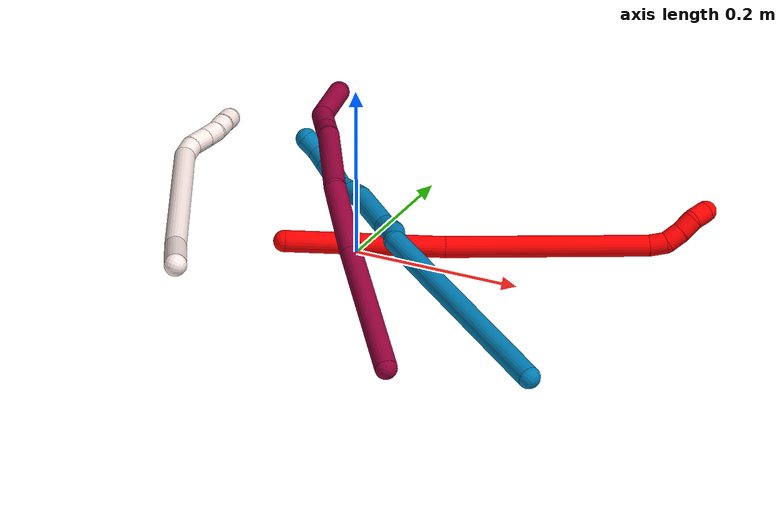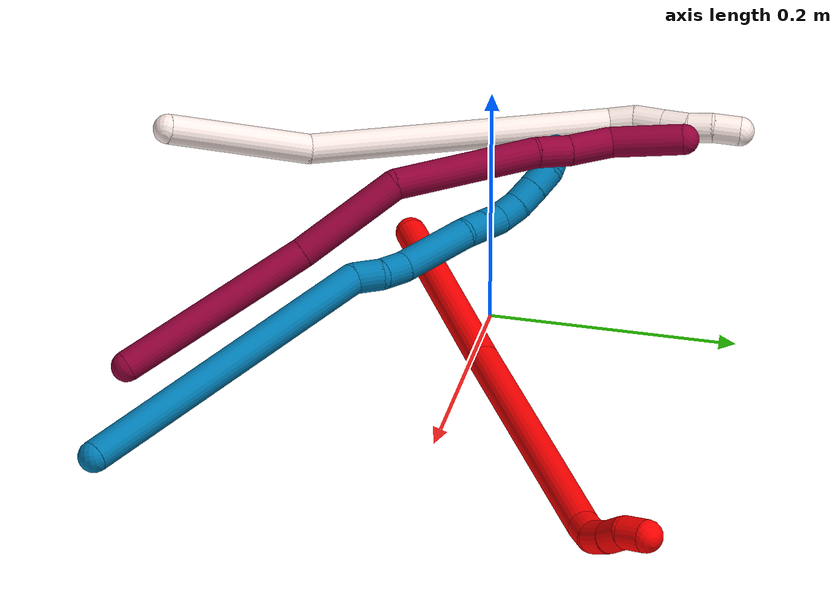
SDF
<sdf version="1.7">
 <world name="default">
  <model name="2">
   <static>0</static>
   <link name="2">
    <collision name="collision-cylinder-e_1_1_4">
     <pose>0.022684 0.012614 0.087803 -0.14269 0.250363 -0.017986</pose>
     <geometry><cylinder><radius>0.0125</radius><length>0.183118</length></cylinder></geometry>
     <surface>
      <friction><ode><mu>1.16</mu><mu2>1.16</mu2><slip1>0</slip1><slip2>0</slip2></ode></friction>
      <contact><ode><kp>1e+06</kp><kd>1</kd><max_vel>0</max_vel><min_depth>0.001</min_depth></ode></contact>
     </surface>
    </collision>
    <visual name="visual-cylinder-e_1_1_4">
     <pose>0.022684 0.012614 0.087803 -0.14269 0.250363 -0.017986</pose>
     <geometry><cylinder><radius>0.0125</radius><length>0.183118</length></cylinder></geometry>
     <material><ambient>1 0 0 1</ambient></material>
    </visual>
    <collision name="collision-cylinder-e_2_4_5">
     <pose>0.073002 0.035198 0.289616 -0.087218 0.236925 -0.010387</pose>
     <geometry><cylinder><radius>0.0125</radius><length>0.235468</length></cylinder></geometry>
     <surface>
      <friction><ode><mu>1.16</mu><mu2>1.16</mu2><slip1>0</slip1><slip2>0</slip2></ode></friction>
      <contact><ode><kp>1e+06</kp><kd>1</kd><max_vel>0</max_vel><min_depth>0.001</min_depth></ode></contact>
     </surface>
    </collision>
    <visual name="visual-cylinder-e_2_4_5">
     <pose>0.073002 0.035198 0.289616 -0.087218 0.236925 -0.010387</pose>
     <geometry><cylinder><radius>0.0125</radius><length>0.235468</length></cylinder></geometry>
     <material><ambient>1 0 0 1</ambient></material>
    </visual>
    <collision name="collision-cylinder-e_3_5_6">
     <pose>0.102274 0.044412 0.413629 0.075314 0.161797 0.006109</pose>
     <geometry><cylinder><radius>0.0125</radius><length>0.020329</length></cylinder></geometry>
     <surface>
      <friction><ode><mu>1.16</mu><mu2>1.16</mu2><slip1>0</slip1><slip2>0</slip2></ode></friction>
      <contact><ode><kp>1e+06</kp><kd>1</kd><max_vel>0</max_vel><min_depth>0.001</min_depth></ode></contact>
     </surface>
    </collision>
    <visual name="visual-cylinder-e_3_5_6">
     <pose>0.102274 0.044412 0.413629 0.075314 0.161797 0.006109</pose>
     <geometry><cylinder><radius>0.0125</radius><length>0.020329</length></cylinder></geometry>
     <material><ambient>1 0 0 1</ambient></material>
    </visual>
    <collision name="collision-cylinder-e_4_6_7">
     <pose>0.101043 0.041232 0.433263 0.246651 -0.281152 -0.035078</pose>
     <geometry><cylinder><radius>0.0125</radius><length>0.020674</length></cylinder></geometry>
     <surface>
      <friction><ode><mu>1.16</mu><mu2>1.16</mu2><slip1>0</slip1><slip2>0</slip2></ode></friction>
      <contact><ode><kp>1e+06</kp><kd>1</kd><max_vel>0</max_vel><min_depth>0.001</min_depth></ode></contact>
     </surface>
    </collision>
    <visual name="visual-cylinder-e_4_6_7">
     <pose>0.101043 0.041232 0.433263 0.246651 -0.281152 -0.035078</pose>
     <geometry><cylinder><radius>0.0125</radius><length>0.020674</length></cylinder></geometry>
     <material><ambient>1 0 0 1</ambient></material>
    </visual>
    <collision name="collision-cylinder-e_5_7_8">
     <pose>0.09421 0.035436 0.451517 0.372734 -0.404564 -0.077302</pose>
     <geometry><cylinder><radius>0.0125</radius><length>0.020145</length></cylinder></geometry>
     <surface>
      <friction><ode><mu>1.16</mu><mu2>1.16</mu2><slip1>0</slip1><slip2>0</slip2></ode></friction>
      <contact><ode><kp>1e+06</kp><kd>1</kd><max_vel>0</max_vel><min_depth>0.001</min_depth></ode></contact>
     </surface>
    </collision>
    <visual name="visual-cylinder-e_5_7_8">
     <pose>0.09421 0.035436 0.451517 0.372734 -0.404564 -0.077302</pose>
     <geometry><cylinder><radius>0.0125</radius><length>0.020145</length></cylinder></geometry>
     <material><ambient>1 0 0 1</ambient></material>
    </visual>
    <collision name="collision-cylinder-e_6_8_2">
     <pose>0.086496 0.032608 0.469538 -0.057843 -0.379079 0.0111</pose>
     <geometry><cylinder><radius>0.0125</radius><length>0.020266</length></cylinder></geometry>
     <surface>
      <friction><ode><mu>1.16</mu><mu2>1.16</mu2><slip1>0</slip1><slip2>0</slip2></ode></friction>
      <contact><ode><kp>1e+06</kp><kd>1</kd><max_vel>0</max_vel><min_depth>0.001</min_depth></ode></contact>
     </surface>
    </collision>
    <visual name="visual-cylinder-e_6_8_2">
     <pose>0.086496 0.032608 0.469538 -0.057843 -0.379079 0.0111</pose>
     <geometry><cylinder><radius>0.0125</radius><length>0.020266</length></cylinder></geometry>
     <material><ambient>1 0 0 1</ambient></material>
    </visual>
    <collision name="collision-sphere-2">
     <pose>0.082746 0.033152 0.478937 0 -0 0</pose>
     <geometry><sphere><radius>0.0125</radius></sphere></geometry>
     <surface>
      <friction><ode><mu>1.16</mu><mu2>1.16</mu2><slip1>0</slip1><slip2>0</slip2></ode></friction>
      <contact><ode><kp>1e+06</kp><kd>1</kd><max_vel>0</max_vel><min_depth>0.001</min_depth></ode></contact>
     </surface>
    </collision>
    <visual name="visual-sphere-2">
     <pose>0.082746 0.033152 0.478937 0 -0 0</pose>
     <geometry><sphere><radius>0.0125</radius></sphere></geometry>
     <material><ambient>1 0 0 1</ambient></material>
    </visual>
    <collision name="collision-sphere-4">
     <pose>0.045368 0.025229 0.175606 0 -0 0</pose>
     <geometry><sphere><radius>0.0125</radius></sphere></geometry>
     <surface>
      <friction><ode><mu>1.16</mu><mu2>1.16</mu2><slip1>0</slip1><slip2>0</slip2></ode></friction>
      <contact><ode><kp>1e+06</kp><kd>1</kd><max_vel>0</max_vel><min_depth>0.001</min_depth></ode></contact>
     </surface>
    </collision>
    <visual name="visual-sphere-4">
     <pose>0.045368 0.025229 0.175606 0 -0 0</pose>
     <geometry><sphere><radius>0.0125</radius></sphere></geometry>
     <material><ambient>1 0 0 1</ambient></material>
    </visual>
    <collision name="collision-sphere-1">
     <geometry><sphere><radius>0.0125</radius></sphere></geometry>
     <surface>
      <friction><ode><mu>1.16</mu><mu2>1.16</mu2><slip1>0</slip1><slip2>0</slip2></ode></friction>
      <contact><ode><kp>1e+06</kp><kd>1</kd><max_vel>0</max_vel><min_depth>0.001</min_depth></ode></contact>
     </surface>
    </collision>
    <visual name="visual-sphere-1">
     <geometry><sphere><radius>0.0125</radius></sphere></geometry>
     <material><ambient>1 0 0 1</ambient></material>
    </visual>
    <collision name="collision-sphere-8">
     <pose>0.090246 0.032064 0.46014 0 -0 0</pose>
     <geometry><sphere><radius>0.0125</radius></sphere></geometry>
     <surface>
      <friction><ode><mu>1.16</mu><mu2>1.16</mu2><slip1>0</slip1><slip2>0</slip2></ode></friction>
      <contact><ode><kp>1e+06</kp><kd>1</kd><max_vel>0</max_vel><min_depth>0.001</min_depth></ode></contact>
     </surface>
    </collision>
    <visual name="visual-sphere-8">
     <pose>0.090246 0.032064 0.46014 0 -0 0</pose>
     <geometry><sphere><radius>0.0125</radius></sphere></geometry>
     <material><ambient>1 0 0 1</ambient></material>
    </visual>
    <collision name="collision-sphere-5">
     <pose>0.100636 0.045167 0.403626 0 -0 0</pose>
     <geometry><sphere><radius>0.0125</radius></sphere></geometry>
     <surface>
      <friction><ode><mu>1.16</mu><mu2>1.16</mu2><slip1>0</slip1><slip2>0</slip2></ode></friction>
      <contact><ode><kp>1e+06</kp><kd>1</kd><max_vel>0</max_vel><min_depth>0.001</min_depth></ode></contact>
     </surface>
    </collision>
    <visual name="visual-sphere-5">
     <pose>0.100636 0.045167 0.403626 0 -0 0</pose>
     <geometry><sphere><radius>0.0125</radius></sphere></geometry>
     <material><ambient>1 0 0 1</ambient></material>
    </visual>
    <collision name="collision-sphere-6">
     <pose>0.103911 0.043657 0.423632 0 -0 0</pose>
     <geometry><sphere><radius>0.0125</radius></sphere></geometry>
     <surface>
      <friction><ode><mu>1.16</mu><mu2>1.16</mu2><slip1>0</slip1><slip2>0</slip2></ode></friction>
      <contact><ode><kp>1e+06</kp><kd>1</kd><max_vel>0</max_vel><min_depth>0.001</min_depth></ode></contact>
     </surface>
    </collision>
    <visual name="visual-sphere-6">
     <pose>0.103911 0.043657 0.423632 0 -0 0</pose>
     <geometry><sphere><radius>0.0125</radius></sphere></geometry>
     <material><ambient>1 0 0 1</ambient></material>
    </visual>
    <collision name="collision-sphere-7">
     <pose>0.098175 0.038808 0.442894 0 -0 0</pose>
     <geometry><sphere><radius>0.0125</radius></sphere></geometry>
     <surface>
      <friction><ode><mu>1.16</mu><mu2>1.16</mu2><slip1>0</slip1><slip2>0</slip2></ode></friction>
      <contact><ode><kp>1e+06</kp><kd>1</kd><max_vel>0</max_vel><min_depth>0.001</min_depth></ode></contact>
     </surface>
    </collision>
    <visual name="visual-sphere-7">
     <pose>0.098175 0.038808 0.442894 0 -0 0</pose>
     <geometry><sphere><radius>0.0125</radius></sphere></geometry>
     <material><ambient>1 0 0 1</ambient></material>
    </visual>
    <inertial>
     <pose>0.058325 0.027456 0.240502 0 -0 0</pose>
     <mass>0.5</mass>
     <inertia>
      <ixx>0.001561</ixx>
      <ixy>0</ixy>
      <ixz>0</ixz>
      <iyy>0.001595</iyy>
      <iyz>0</iyz>
      <izz>-0.000511</izz>
     </inertia>
    </inertial>
   </link>
   <pose>-0.052482 -0.078413 0.037602 -1.40792 0.451378 -0.783906</pose>
  </model>
  <model name="8">
   <static>0</static>
   <link name="8">
    <collision name="collision-cylinder-e_1_1_4">
     <pose>-0.023371 0.050576 0.061276 -0.690028 -0.286085 0.10343</pose>
     <geometry><cylinder><radius>0.0125</radius><length>0.165638</length></cylinder></geometry>
     <surface>
      <friction><ode><mu>1.16</mu><mu2>1.16</mu2><slip1>0</slip1><slip2>0</slip2></ode></friction>
      <contact><ode><kp>1e+06</kp><kd>1</kd><max_vel>0</max_vel><min_depth>0.001</min_depth></ode></contact>
     </surface>
    </collision>
    <visual name="visual-cylinder-e_1_1_4">
     <pose>-0.023371 0.050576 0.061276 -0.690028 -0.286085 0.10343</pose>
     <geometry><cylinder><radius>0.0125</radius><length>0.165638</length></cylinder></geometry>
     <material><ambient>0.584314 0 0.227451 1</ambient></material>
    </visual>
    <collision name="collision-cylinder-e_2_4_5">
     <pose>-0.060806 0.125827 0.158907 -0.5963 -0.309774 0.095892</pose>
     <geometry><cylinder><radius>0.0125</radius><length>0.092266</length></cylinder></geometry>
     <surface>
      <friction><ode><mu>1.16</mu><mu2>1.16</mu2><slip1>0</slip1><slip2>0</slip2></ode></friction>
      <contact><ode><kp>1e+06</kp><kd>1</kd><max_vel>0</max_vel><min_depth>0.001</min_depth></ode></contact>
     </surface>
    </collision>
    <visual name="visual-cylinder-e_2_4_5">
     <pose>-0.060806 0.125827 0.158907 -0.5963 -0.309774 0.095892</pose>
     <geometry><cylinder><radius>0.0125</radius><length>0.092266</length></cylinder></geometry>
     <material><ambient>0.584314 0 0.227451 1</ambient></material>
    </visual>
    <collision name="collision-cylinder-e_3_5_6">
     <pose>-0.074544 0.195924 0.233138 -0.87574 0.005501 -0.002576</pose>
     <geometry><cylinder><radius>0.0125</radius><length>0.118287</length></cylinder></geometry>
     <surface>
      <friction><ode><mu>1.16</mu><mu2>1.16</mu2><slip1>0</slip1><slip2>0</slip2></ode></friction>
      <contact><ode><kp>1e+06</kp><kd>1</kd><max_vel>0</max_vel><min_depth>0.001</min_depth></ode></contact>
     </surface>
    </collision>
    <visual name="visual-cylinder-e_3_5_6">
     <pose>-0.074544 0.195924 0.233138 -0.87574 0.005501 -0.002576</pose>
     <geometry><cylinder><radius>0.0125</radius><length>0.118287</length></cylinder></geometry>
     <material><ambient>0.584314 0 0.227451 1</ambient></material>
    </visual>
    <collision name="collision-cylinder-e_4_6_7">
     <pose>-0.073273 0.253732 0.277631 -1.08014 0.06727 -0.04034</pose>
     <geometry><cylinder><radius>0.0125</radius><length>0.028148</length></cylinder></geometry>
     <surface>
      <friction><ode><mu>1.16</mu><mu2>1.16</mu2><slip1>0</slip1><slip2>0</slip2></ode></friction>
      <contact><ode><kp>1e+06</kp><kd>1</kd><max_vel>0</max_vel><min_depth>0.001</min_depth></ode></contact>
     </surface>
    </collision>
    <visual name="visual-cylinder-e_4_6_7">
     <pose>-0.073273 0.253732 0.277631 -1.08014 0.06727 -0.04034</pose>
     <geometry><cylinder><radius>0.0125</radius><length>0.028148</length></cylinder></geometry>
     <material><ambient>0.584314 0 0.227451 1</ambient></material>
    </visual>
    <collision name="collision-cylinder-e_5_7_8">
     <pose>-0.072592 0.281055 0.294771 -0.957101 -0.014516 0.007531</pose>
     <geometry><cylinder><radius>0.0125</radius><length>0.036547</length></cylinder></geometry>
     <surface>
      <friction><ode><mu>1.16</mu><mu2>1.16</mu2><slip1>0</slip1><slip2>0</slip2></ode></friction>
      <contact><ode><kp>1e+06</kp><kd>1</kd><max_vel>0</max_vel><min_depth>0.001</min_depth></ode></contact>
     </surface>
    </collision>
    <visual name="visual-cylinder-e_5_7_8">
     <pose>-0.072592 0.281055 0.294771 -0.957101 -0.014516 0.007531</pose>
     <geometry><cylinder><radius>0.0125</radius><length>0.036547</length></cylinder></geometry>
     <material><ambient>0.584314 0 0.227451 1</ambient></material>
    </visual>
    <collision name="collision-cylinder-e_6_8_2">
     <pose>-0.063134 0.313022 0.327408 -0.6562 0.335189 -0.115053</pose>
     <geometry><cylinder><radius>0.0125</radius><length>0.059114</length></cylinder></geometry>
     <surface>
      <friction><ode><mu>1.16</mu><mu2>1.16</mu2><slip1>0</slip1><slip2>0</slip2></ode></friction>
      <contact><ode><kp>1e+06</kp><kd>1</kd><max_vel>0</max_vel><min_depth>0.001</min_depth></ode></contact>
     </surface>
    </collision>
    <visual name="visual-cylinder-e_6_8_2">
     <pose>-0.063134 0.313022 0.327408 -0.6562 0.335189 -0.115053</pose>
     <geometry><cylinder><radius>0.0125</radius><length>0.059114</length></cylinder></geometry>
     <material><ambient>0.584314 0 0.227451 1</ambient></material>
    </visual>
    <collision name="collision-sphere-2">
     <pose>-0.053412 0.330052 0.349524 0 -0 0</pose>
     <geometry><sphere><radius>0.0125</radius></sphere></geometry>
     <surface>
      <friction><ode><mu>1.16</mu><mu2>1.16</mu2><slip1>0</slip1><slip2>0</slip2></ode></friction>
      <contact><ode><kp>1e+06</kp><kd>1</kd><max_vel>0</max_vel><min_depth>0.001</min_depth></ode></contact>
     </surface>
    </collision>
    <visual name="visual-sphere-2">
     <pose>-0.053412 0.330052 0.349524 0 -0 0</pose>
     <geometry><sphere><radius>0.0125</radius></sphere></geometry>
     <material><ambient>0.584314 0 0.227451 1</ambient></material>
    </visual>
    <collision name="collision-sphere-4">
     <pose>-0.046743 0.101153 0.122553 0 -0 0</pose>
     <geometry><sphere><radius>0.0125</radius></sphere></geometry>
     <surface>
      <friction><ode><mu>1.16</mu><mu2>1.16</mu2><slip1>0</slip1><slip2>0</slip2></ode></friction>
      <contact><ode><kp>1e+06</kp><kd>1</kd><max_vel>0</max_vel><min_depth>0.001</min_depth></ode></contact>
     </surface>
    </collision>
    <visual name="visual-sphere-4">
     <pose>-0.046743 0.101153 0.122553 0 -0 0</pose>
     <geometry><sphere><radius>0.0125</radius></sphere></geometry>
     <material><ambient>0.584314 0 0.227451 1</ambient></material>
    </visual>
    <collision name="collision-sphere-1">
     <geometry><sphere><radius>0.0125</radius></sphere></geometry>
     <surface>
      <friction><ode><mu>1.16</mu><mu2>1.16</mu2><slip1>0</slip1><slip2>0</slip2></ode></friction>
      <contact><ode><kp>1e+06</kp><kd>1</kd><max_vel>0</max_vel><min_depth>0.001</min_depth></ode></contact>
     </surface>
    </collision>
    <visual name="visual-sphere-1">
     <geometry><sphere><radius>0.0125</radius></sphere></geometry>
     <material><ambient>0.584314 0 0.227451 1</ambient></material>
    </visual>
    <collision name="collision-sphere-8">
     <pose>-0.072857 0.295993 0.305293 0 -0 0</pose>
     <geometry><sphere><radius>0.0125</radius></sphere></geometry>
     <surface>
      <friction><ode><mu>1.16</mu><mu2>1.16</mu2><slip1>0</slip1><slip2>0</slip2></ode></friction>
      <contact><ode><kp>1e+06</kp><kd>1</kd><max_vel>0</max_vel><min_depth>0.001</min_depth></ode></contact>
     </surface>
    </collision>
    <visual name="visual-sphere-8">
     <pose>-0.072857 0.295993 0.305293 0 -0 0</pose>
     <geometry><sphere><radius>0.0125</radius></sphere></geometry>
     <material><ambient>0.584314 0 0.227451 1</ambient></material>
    </visual>
    <collision name="collision-sphere-5">
     <pose>-0.074869 0.150501 0.195261 0 -0 0</pose>
     <geometry><sphere><radius>0.0125</radius></sphere></geometry>
     <surface>
      <friction><ode><mu>1.16</mu><mu2>1.16</mu2><slip1>0</slip1><slip2>0</slip2></ode></friction>
      <contact><ode><kp>1e+06</kp><kd>1</kd><max_vel>0</max_vel><min_depth>0.001</min_depth></ode></contact>
     </surface>
    </collision>
    <visual name="visual-sphere-5">
     <pose>-0.074869 0.150501 0.195261 0 -0 0</pose>
     <geometry><sphere><radius>0.0125</radius></sphere></geometry>
     <material><ambient>0.584314 0 0.227451 1</ambient></material>
    </visual>
    <collision name="collision-sphere-6">
     <pose>-0.074219 0.241347 0.271015 0 -0 0</pose>
     <geometry><sphere><radius>0.0125</radius></sphere></geometry>
     <surface>
      <friction><ode><mu>1.16</mu><mu2>1.16</mu2><slip1>0</slip1><slip2>0</slip2></ode></friction>
      <contact><ode><kp>1e+06</kp><kd>1</kd><max_vel>0</max_vel><min_depth>0.001</min_depth></ode></contact>
     </surface>
    </collision>
    <visual name="visual-sphere-6">
     <pose>-0.074219 0.241347 0.271015 0 -0 0</pose>
     <geometry><sphere><radius>0.0125</radius></sphere></geometry>
     <material><ambient>0.584314 0 0.227451 1</ambient></material>
    </visual>
    <collision name="collision-sphere-7">
     <pose>-0.072327 0.266118 0.284248 0 -0 0</pose>
     <geometry><sphere><radius>0.0125</radius></sphere></geometry>
     <surface>
      <friction><ode><mu>1.16</mu><mu2>1.16</mu2><slip1>0</slip1><slip2>0</slip2></ode></friction>
      <contact><ode><kp>1e+06</kp><kd>1</kd><max_vel>0</max_vel><min_depth>0.001</min_depth></ode></contact>
     </surface>
    </collision>
    <visual name="visual-sphere-7">
     <pose>-0.072327 0.266118 0.284248 0 -0 0</pose>
     <geometry><sphere><radius>0.0125</radius></sphere></geometry>
     <material><ambient>0.584314 0 0.227451 1</ambient></material>
    </visual>
    <inertial>
     <pose>-0.053493 0.15816 0.180662 0 -0 0</pose>
     <mass>0.5</mass>
     <inertia><ixx>0.00064</ixx><ixy>0</ixy><ixz>0</ixz><iyy>0.00054</iyy><iyz>0</iyz><izz>-0.00025</izz></inertia>
    </inertial>
   </link>
   <pose>0.162965 -0.256153 0.012486 -0.595708 0.520688 0.586287</pose>
  </model>
  <model name="9">
   <static>0</static>
   <link name="9">
    <collision name="collision-cylinder-e_1_1_4">
     <pose>-0.083805 0.090617 -0.056908 -2.13155 -0.66441 1.11581</pose>
     <geometry><cylinder><radius>0.0125</radius><length>0.271832</length></cylinder></geometry>
     <surface>
      <friction><ode><mu>1.16</mu><mu2>1.16</mu2><slip1>0</slip1><slip2>0</slip2></ode></friction>
      <contact><ode><kp>1e+06</kp><kd>1</kd><max_vel>0</max_vel><min_depth>0.001</min_depth></ode></contact>
     </surface>
    </collision>
    <visual name="visual-cylinder-e_1_1_4">
     <pose>-0.083805 0.090617 -0.056908 -2.13155 -0.66441 1.11581</pose>
     <geometry><cylinder><radius>0.0125</radius><length>0.271832</length></cylinder></geometry>
     <material><ambient>0 0.490196 0.709804 1</ambient></material>
    </visual>
    <collision name="collision-cylinder-e_2_4_5">
     <pose>-0.175085 0.184123 -0.122006 -2.80246 -0.7106 2.27697</pose>
     <geometry><cylinder><radius>0.0125</radius><length>0.022917</length></cylinder></geometry>
     <surface>
      <friction><ode><mu>1.16</mu><mu2>1.16</mu2><slip1>0</slip1><slip2>0</slip2></ode></friction>
      <contact><ode><kp>1e+06</kp><kd>1</kd><max_vel>0</max_vel><min_depth>0.001</min_depth></ode></contact>
     </surface>
    </collision>
    <visual name="visual-cylinder-e_2_4_5">
     <pose>-0.175085 0.184123 -0.122006 -2.80246 -0.7106 2.27697</pose>
     <geometry><cylinder><radius>0.0125</radius><length>0.022917</length></cylinder></geometry>
     <material><ambient>0 0.490196 0.709804 1</ambient></material>
    </visual>
    <collision name="collision-cylinder-e_3_5_6">
     <pose>-0.191275 0.192365 -0.13465 -2.26481 -0.89673 1.59653</pose>
     <geometry><cylinder><radius>0.0125</radius><length>0.022312</length></cylinder></geometry>
     <surface>
      <friction><ode><mu>1.16</mu><mu2>1.16</mu2><slip1>0</slip1><slip2>0</slip2></ode></friction>
      <contact><ode><kp>1e+06</kp><kd>1</kd><max_vel>0</max_vel><min_depth>0.001</min_depth></ode></contact>
     </surface>
    </collision>
    <visual name="visual-cylinder-e_3_5_6">
     <pose>-0.191275 0.192365 -0.13465 -2.26481 -0.89673 1.59653</pose>
     <geometry><cylinder><radius>0.0125</radius><length>0.022312</length></cylinder></geometry>
     <material><ambient>0 0.490196 0.709804 1</ambient></material>
    </visual>
    <collision name="collision-cylinder-e_4_6_7">
     <pose>-0.219839 0.216305 -0.154335 -2.25725 -0.690375 1.29913</pose>
     <geometry><cylinder><radius>0.0125</radius><length>0.062335</length></cylinder></geometry>
     <surface>
      <friction><ode><mu>1.16</mu><mu2>1.16</mu2><slip1>0</slip1><slip2>0</slip2></ode></friction>
      <contact><ode><kp>1e+06</kp><kd>1</kd><max_vel>0</max_vel><min_depth>0.001</min_depth></ode></contact>
     </surface>
    </collision>
    <visual name="visual-cylinder-e_4_6_7">
     <pose>-0.219839 0.216305 -0.154335 -2.25725 -0.690375 1.29913</pose>
     <geometry><cylinder><radius>0.0125</radius><length>0.062335</length></cylinder></geometry>
     <material><ambient>0 0.490196 0.709804 1</ambient></material>
    </visual>
    <collision name="collision-cylinder-e_5_7_8">
     <pose>-0.247778 0.240423 -0.172616 -2.07484 -0.907883 1.3812</pose>
     <geometry><cylinder><radius>0.0125</radius><length>0.020527</length></cylinder></geometry>
     <surface>
      <friction><ode><mu>1.16</mu><mu2>1.16</mu2><slip1>0</slip1><slip2>0</slip2></ode></friction>
      <contact><ode><kp>1e+06</kp><kd>1</kd><max_vel>0</max_vel><min_depth>0.001</min_depth></ode></contact>
     </surface>
    </collision>
    <visual name="visual-cylinder-e_5_7_8">
     <pose>-0.247778 0.240423 -0.172616 -2.07484 -0.907883 1.3812</pose>
     <geometry><cylinder><radius>0.0125</radius><length>0.020527</length></cylinder></geometry>
     <material><ambient>0 0.490196 0.709804 1</ambient></material>
    </visual>
    <collision name="collision-cylinder-e_6_8_9">
     <pose>-0.263917 0.251236 -0.178486 -2.06115 -0.931216 1.39474</pose>
     <geometry><cylinder><radius>0.0125</radius><length>0.020065</length></cylinder></geometry>
     <surface>
      <friction><ode><mu>1.16</mu><mu2>1.16</mu2><slip1>0</slip1><slip2>0</slip2></ode></friction>
      <contact><ode><kp>1e+06</kp><kd>1</kd><max_vel>0</max_vel><min_depth>0.001</min_depth></ode></contact>
     </surface>
    </collision>
    <visual name="visual-cylinder-e_6_8_9">
     <pose>-0.263917 0.251236 -0.178486 -2.06115 -0.931216 1.39474</pose>
     <geometry><cylinder><radius>0.0125</radius><length>0.020065</length></cylinder></geometry>
     <material><ambient>0 0.490196 0.709804 1</ambient></material>
    </visual>
    <collision name="collision-cylinder-e_7_9_10">
     <pose>-0.276955 0.26323 -0.186796 -2.25641 -0.522092 1.02652</pose>
     <geometry><cylinder><radius>0.0125</radius><length>0.020007</length></cylinder></geometry>
     <surface>
      <friction><ode><mu>1.16</mu><mu2>1.16</mu2><slip1>0</slip1><slip2>0</slip2></ode></friction>
      <contact><ode><kp>1e+06</kp><kd>1</kd><max_vel>0</max_vel><min_depth>0.001</min_depth></ode></contact>
     </surface>
    </collision>
    <visual name="visual-cylinder-e_7_9_10">
     <pose>-0.276955 0.26323 -0.186796 -2.25641 -0.522092 1.02652</pose>
     <geometry><cylinder><radius>0.0125</radius><length>0.020007</length></cylinder></geometry>
     <material><ambient>0 0.490196 0.709804 1</ambient></material>
    </visual>
    <collision name="collision-cylinder-e_8_10_11">
     <pose>-0.285779 0.277847 -0.197062 -2.11428 -0.393589 0.679397</pose>
     <geometry><cylinder><radius>0.0125</radius><length>0.020001</length></cylinder></geometry>
     <surface>
      <friction><ode><mu>1.16</mu><mu2>1.16</mu2><slip1>0</slip1><slip2>0</slip2></ode></friction>
      <contact><ode><kp>1e+06</kp><kd>1</kd><max_vel>0</max_vel><min_depth>0.001</min_depth></ode></contact>
     </surface>
    </collision>
    <visual name="visual-cylinder-e_8_10_11">
     <pose>-0.285779 0.277847 -0.197062 -2.11428 -0.393589 0.679397</pose>
     <geometry><cylinder><radius>0.0125</radius><length>0.020001</length></cylinder></geometry>
     <material><ambient>0 0.490196 0.709804 1</ambient></material>
    </visual>
    <collision name="collision-cylinder-e_9_11_12">
     <pose>-0.293215 0.293823 -0.206517 -2.09614 -0.36833 0.625367</pose>
     <geometry><cylinder><radius>0.0125</radius><length>0.02</length></cylinder></geometry>
     <surface>
      <friction><ode><mu>1.16</mu><mu2>1.16</mu2><slip1>0</slip1><slip2>0</slip2></ode></friction>
      <contact><ode><kp>1e+06</kp><kd>1</kd><max_vel>0</max_vel><min_depth>0.001</min_depth></ode></contact>
     </surface>
    </collision>
    <visual name="visual-cylinder-e_9_11_12">
     <pose>-0.293215 0.293823 -0.206517 -2.09614 -0.36833 0.625367</pose>
     <geometry><cylinder><radius>0.0125</radius><length>0.02</length></cylinder></geometry>
     <material><ambient>0 0.490196 0.709804 1</ambient></material>
    </visual>
    <collision name="collision-cylinder-e_10_12_2">
     <pose>-0.298955 0.311418 -0.213378 -1.79607 -0.215577 0.269967</pose>
     <geometry><cylinder><radius>0.0125</radius><length>0.020004</length></cylinder></geometry>
     <surface>
      <friction><ode><mu>1.16</mu><mu2>1.16</mu2><slip1>0</slip1><slip2>0</slip2></ode></friction>
      <contact><ode><kp>1e+06</kp><kd>1</kd><max_vel>0</max_vel><min_depth>0.001</min_depth></ode></contact>
     </surface>
    </collision>
    <visual name="visual-cylinder-e_10_12_2">
     <pose>-0.298955 0.311418 -0.213378 -1.79607 -0.215577 0.269967</pose>
     <geometry><cylinder><radius>0.0125</radius><length>0.020004</length></cylinder></geometry>
     <material><ambient>0 0.490196 0.709804 1</ambient></material>
    </visual>
    <collision name="collision-sphere-2">
     <pose>-0.301094 0.320941 -0.21556 0 -0 0</pose>
     <geometry><sphere><radius>0.0125</radius></sphere></geometry>
     <surface>
      <friction><ode><mu>1.16</mu><mu2>1.16</mu2><slip1>0</slip1><slip2>0</slip2></ode></friction>
      <contact><ode><kp>1e+06</kp><kd>1</kd><max_vel>0</max_vel><min_depth>0.001</min_depth></ode></contact>
     </surface>
    </collision>
    <visual name="visual-sphere-2">
     <pose>-0.301094 0.320941 -0.21556 0 -0 0</pose>
     <geometry><sphere><radius>0.0125</radius></sphere></geometry>
     <material><ambient>0 0.490196 0.709804 1</ambient></material>
    </visual>
    <collision name="collision-sphere-12">
     <pose>-0.296815 0.301894 -0.211195 0 -0 0</pose>
     <geometry><sphere><radius>0.0125</radius></sphere></geometry>
     <surface>
      <friction><ode><mu>1.16</mu><mu2>1.16</mu2><slip1>0</slip1><slip2>0</slip2></ode></friction>
      <contact><ode><kp>1e+06</kp><kd>1</kd><max_vel>0</max_vel><min_depth>0.001</min_depth></ode></contact>
     </surface>
    </collision>
    <visual name="visual-sphere-12">
     <pose>-0.296815 0.301894 -0.211195 0 -0 0</pose>
     <geometry><sphere><radius>0.0125</radius></sphere></geometry>
     <material><ambient>0 0.490196 0.709804 1</ambient></material>
    </visual>
    <collision name="collision-sphere-11">
     <pose>-0.289614 0.285751 -0.201838 0 -0 0</pose>
     <geometry><sphere><radius>0.0125</radius></sphere></geometry>
     <surface>
      <friction><ode><mu>1.16</mu><mu2>1.16</mu2><slip1>0</slip1><slip2>0</slip2></ode></friction>
      <contact><ode><kp>1e+06</kp><kd>1</kd><max_vel>0</max_vel><min_depth>0.001</min_depth></ode></contact>
     </surface>
    </collision>
    <visual name="visual-sphere-11">
     <pose>-0.289614 0.285751 -0.201838 0 -0 0</pose>
     <geometry><sphere><radius>0.0125</radius></sphere></geometry>
     <material><ambient>0 0.490196 0.709804 1</ambient></material>
    </visual>
    <collision name="collision-sphere-10">
     <pose>-0.281944 0.269942 -0.192286 0 -0 0</pose>
     <geometry><sphere><radius>0.0125</radius></sphere></geometry>
     <surface>
      <friction><ode><mu>1.16</mu><mu2>1.16</mu2><slip1>0</slip1><slip2>0</slip2></ode></friction>
      <contact><ode><kp>1e+06</kp><kd>1</kd><max_vel>0</max_vel><min_depth>0.001</min_depth></ode></contact>
     </surface>
    </collision>
    <visual name="visual-sphere-10">
     <pose>-0.281944 0.269942 -0.192286 0 -0 0</pose>
     <geometry><sphere><radius>0.0125</radius></sphere></geometry>
     <material><ambient>0 0.490196 0.709804 1</ambient></material>
    </visual>
    <collision name="collision-sphere-9">
     <pose>-0.271966 0.256519 -0.181306 0 -0 0</pose>
     <geometry><sphere><radius>0.0125</radius></sphere></geometry>
     <surface>
      <friction><ode><mu>1.16</mu><mu2>1.16</mu2><slip1>0</slip1><slip2>0</slip2></ode></friction>
      <contact><ode><kp>1e+06</kp><kd>1</kd><max_vel>0</max_vel><min_depth>0.001</min_depth></ode></contact>
     </surface>
    </collision>
    <visual name="visual-sphere-9">
     <pose>-0.271966 0.256519 -0.181306 0 -0 0</pose>
     <geometry><sphere><radius>0.0125</radius></sphere></geometry>
     <material><ambient>0 0.490196 0.709804 1</ambient></material>
    </visual>
    <collision name="collision-sphere-4">
     <pose>-0.167611 0.181234 -0.113816 0 -0 0</pose>
     <geometry><sphere><radius>0.0125</radius></sphere></geometry>
     <surface>
      <friction><ode><mu>1.16</mu><mu2>1.16</mu2><slip1>0</slip1><slip2>0</slip2></ode></friction>
      <contact><ode><kp>1e+06</kp><kd>1</kd><max_vel>0</max_vel><min_depth>0.001</min_depth></ode></contact>
     </surface>
    </collision>
    <visual name="visual-sphere-4">
     <pose>-0.167611 0.181234 -0.113816 0 -0 0</pose>
     <geometry><sphere><radius>0.0125</radius></sphere></geometry>
     <material><ambient>0 0.490196 0.709804 1</ambient></material>
    </visual>
    <collision name="collision-sphere-1">
     <geometry><sphere><radius>0.0125</radius></sphere></geometry>
     <surface>
      <friction><ode><mu>1.16</mu><mu2>1.16</mu2><slip1>0</slip1><slip2>0</slip2></ode></friction>
      <contact><ode><kp>1e+06</kp><kd>1</kd><max_vel>0</max_vel><min_depth>0.001</min_depth></ode></contact>
     </surface>
    </collision>
    <visual name="visual-sphere-1">
     <geometry><sphere><radius>0.0125</radius></sphere></geometry>
     <material><ambient>0 0.490196 0.709804 1</ambient></material>
    </visual>
    <collision name="collision-sphere-8">
     <pose>-0.255867 0.245954 -0.175666 0 -0 0</pose>
     <geometry><sphere><radius>0.0125</radius></sphere></geometry>
     <surface>
      <friction><ode><mu>1.16</mu><mu2>1.16</mu2><slip1>0</slip1><slip2>0</slip2></ode></friction>
      <contact><ode><kp>1e+06</kp><kd>1</kd><max_vel>0</max_vel><min_depth>0.001</min_depth></ode></contact>
     </surface>
    </collision>
    <visual name="visual-sphere-8">
     <pose>-0.255867 0.245954 -0.175666 0 -0 0</pose>
     <geometry><sphere><radius>0.0125</radius></sphere></geometry>
     <material><ambient>0 0.490196 0.709804 1</ambient></material>
    </visual>
    <collision name="collision-sphere-5">
     <pose>-0.182559 0.187012 -0.130196 0 -0 0</pose>
     <geometry><sphere><radius>0.0125</radius></sphere></geometry>
     <surface>
      <friction><ode><mu>1.16</mu><mu2>1.16</mu2><slip1>0</slip1><slip2>0</slip2></ode></friction>
      <contact><ode><kp>1e+06</kp><kd>1</kd><max_vel>0</max_vel><min_depth>0.001</min_depth></ode></contact>
     </surface>
    </collision>
    <visual name="visual-sphere-5">
     <pose>-0.182559 0.187012 -0.130196 0 -0 0</pose>
     <geometry><sphere><radius>0.0125</radius></sphere></geometry>
     <material><ambient>0 0.490196 0.709804 1</ambient></material>
    </visual>
    <collision name="collision-sphere-6">
     <pose>-0.199991 0.197717 -0.139104 0 -0 0</pose>
     <geometry><sphere><radius>0.0125</radius></sphere></geometry>
     <surface>
      <friction><ode><mu>1.16</mu><mu2>1.16</mu2><slip1>0</slip1><slip2>0</slip2></ode></friction>
      <contact><ode><kp>1e+06</kp><kd>1</kd><max_vel>0</max_vel><min_depth>0.001</min_depth></ode></contact>
     </surface>
    </collision>
    <visual name="visual-sphere-6">
     <pose>-0.199991 0.197717 -0.139104 0 -0 0</pose>
     <geometry><sphere><radius>0.0125</radius></sphere></geometry>
     <material><ambient>0 0.490196 0.709804 1</ambient></material>
    </visual>
    <collision name="collision-sphere-7">
     <pose>-0.239688 0.234892 -0.169565 0 -0 0</pose>
     <geometry><sphere><radius>0.0125</radius></sphere></geometry>
     <surface>
      <friction><ode><mu>1.16</mu><mu2>1.16</mu2><slip1>0</slip1><slip2>0</slip2></ode></friction>
      <contact><ode><kp>1e+06</kp><kd>1</kd><max_vel>0</max_vel><min_depth>0.001</min_depth></ode></contact>
     </surface>
    </collision>
    <visual name="visual-sphere-7">
     <pose>-0.239688 0.234892 -0.169565 0 -0 0</pose>
     <geometry><sphere><radius>0.0125</radius></sphere></geometry>
     <material><ambient>0 0.490196 0.709804 1</ambient></material>
    </visual>
    <inertial>
     <pose>-0.156496 0.159067 -0.108184 0 -0 0</pose>
     <mass>0.5</mass>
     <inertia>
      <ixx>0.001783</ixx>
      <ixy>0</ixy>
      <ixz>0</ixz>
      <iyy>0.001647</iyy>
      <iyz>0</iyz>
      <izz>-0.000101</izz>
     </inertia>
    </inertial>
   </link>
   <pose>0.318214 -0.234157 0.027822 2.10118 -0.73465 -0.543409</pose>
  </model>
  <model name="11">
   <static>0</static>
   <link name="11">
    <collision name="collision-cylinder-e_1_1_4">
     <pose>-0.05021 0.028225 -0.024682 -2.28932 -0.92937 1.66983</pose>
     <geometry><cylinder><radius>0.0125</radius><length>0.12533</length></cylinder></geometry>
     <surface>
      <friction><ode><mu>1.16</mu><mu2>1.16</mu2><slip1>0</slip1><slip2>0</slip2></ode></friction>
      <contact><ode><kp>1e+06</kp><kd>1</kd><max_vel>0</max_vel><min_depth>0.001</min_depth></ode></contact>
     </surface>
    </collision>
    <visual name="visual-cylinder-e_1_1_4">
     <pose>-0.05021 0.028225 -0.024682 -2.28932 -0.92937 1.66983</pose>
     <geometry><cylinder><radius>0.0125</radius><length>0.12533</length></cylinder></geometry>
     <material><ambient>1 0.933333 0.909804 1</ambient></material>
    </visual>
    <collision name="collision-cylinder-e_2_4_5">
     <pose>-0.215641 0.081509 -0.105297 -2.72039 -1.08193 2.45786</pose>
     <geometry><cylinder><radius>0.0125</radius><length>0.261017</length></cylinder></geometry>
     <surface>
      <friction><ode><mu>1.16</mu><mu2>1.16</mu2><slip1>0</slip1><slip2>0</slip2></ode></friction>
      <contact><ode><kp>1e+06</kp><kd>1</kd><max_vel>0</max_vel><min_depth>0.001</min_depth></ode></contact>
     </surface>
    </collision>
    <visual name="visual-cylinder-e_2_4_5">
     <pose>-0.215641 0.081509 -0.105297 -2.72039 -1.08193 2.45786</pose>
     <geometry><cylinder><radius>0.0125</radius><length>0.261017</length></cylinder></geometry>
     <material><ambient>1 0.933333 0.909804 1</ambient></material>
    </visual>
    <collision name="collision-cylinder-e_3_5_6">
     <pose>-0.342085 0.105848 -0.163055 2.76572 -1.39771 -2.69646</pose>
     <geometry><cylinder><radius>0.0125</radius><length>0.022785</length></cylinder></geometry>
     <surface>
      <friction><ode><mu>1.16</mu><mu2>1.16</mu2><slip1>0</slip1><slip2>0</slip2></ode></friction>
      <contact><ode><kp>1e+06</kp><kd>1</kd><max_vel>0</max_vel><min_depth>0.001</min_depth></ode></contact>
     </surface>
    </collision>
    <visual name="visual-cylinder-e_3_5_6">
     <pose>-0.342085 0.105848 -0.163055 2.76572 -1.39771 -2.69646</pose>
     <geometry><cylinder><radius>0.0125</radius><length>0.022785</length></cylinder></geometry>
     <material><ambient>1 0.933333 0.909804 1</ambient></material>
    </visual>
    <collision name="collision-cylinder-e_4_6_7">
     <pose>-0.365937 0.105111 -0.162787 0.008124 -1.40654 -0.006889</pose>
     <geometry><cylinder><radius>0.0125</radius><length>0.025603</length></cylinder></geometry>
     <surface>
      <friction><ode><mu>1.16</mu><mu2>1.16</mu2><slip1>0</slip1><slip2>0</slip2></ode></friction>
      <contact><ode><kp>1e+06</kp><kd>1</kd><max_vel>0</max_vel><min_depth>0.001</min_depth></ode></contact>
     </surface>
    </collision>
    <visual name="visual-cylinder-e_4_6_7">
     <pose>-0.365937 0.105111 -0.162787 0.008124 -1.40654 -0.006889</pose>
     <geometry><cylinder><radius>0.0125</radius><length>0.025603</length></cylinder></geometry>
     <material><ambient>1 0.933333 0.909804 1</ambient></material>
    </visual>
    <collision name="collision-cylinder-e_5_7_8">
     <pose>-0.389477 0.104851 -0.158966 0.139565 -1.41229 -0.11908</pose>
     <geometry><cylinder><radius>0.0125</radius><length>0.0221</length></cylinder></geometry>
     <surface>
      <friction><ode><mu>1.16</mu><mu2>1.16</mu2><slip1>0</slip1><slip2>0</slip2></ode></friction>
      <contact><ode><kp>1e+06</kp><kd>1</kd><max_vel>0</max_vel><min_depth>0.001</min_depth></ode></contact>
     </surface>
    </collision>
    <visual name="visual-cylinder-e_5_7_8">
     <pose>-0.389477 0.104851 -0.158966 0.139565 -1.41229 -0.11908</pose>
     <geometry><cylinder><radius>0.0125</radius><length>0.0221</length></cylinder></geometry>
     <material><ambient>1 0.933333 0.909804 1</ambient></material>
    </visual>
    <collision name="collision-cylinder-e_6_8_9">
     <pose>-0.410646 0.104766 -0.158061 -2.95201 -1.4894 2.93602</pose>
     <geometry><cylinder><radius>0.0125</radius><length>0.020583</length></cylinder></geometry>
     <surface>
      <friction><ode><mu>1.16</mu><mu2>1.16</mu2><slip1>0</slip1><slip2>0</slip2></ode></friction>
      <contact><ode><kp>1e+06</kp><kd>1</kd><max_vel>0</max_vel><min_depth>0.001</min_depth></ode></contact>
     </surface>
    </collision>
    <visual name="visual-cylinder-e_6_8_9">
     <pose>-0.410646 0.104766 -0.158061 -2.95201 -1.4894 2.93602</pose>
     <geometry><cylinder><radius>0.0125</radius><length>0.020583</length></cylinder></geometry>
     <material><ambient>1 0.933333 0.909804 1</ambient></material>
    </visual>
    <collision name="collision-cylinder-e_7_9_2">
     <pose>-0.431902 0.107149 -0.160138 -2.08453 -1.34248 1.87367</pose>
     <geometry><cylinder><radius>0.0125</radius><length>0.022582</length></cylinder></geometry>
     <surface>
      <friction><ode><mu>1.16</mu><mu2>1.16</mu2><slip1>0</slip1><slip2>0</slip2></ode></friction>
      <contact><ode><kp>1e+06</kp><kd>1</kd><max_vel>0</max_vel><min_depth>0.001</min_depth></ode></contact>
     </surface>
    </collision>
    <visual name="visual-cylinder-e_7_9_2">
     <pose>-0.431902 0.107149 -0.160138 -2.08453 -1.34248 1.87367</pose>
     <geometry><cylinder><radius>0.0125</radius><length>0.022582</length></cylinder></geometry>
     <material><ambient>1 0.933333 0.909804 1</ambient></material>
    </visual>
    <collision name="collision-sphere-2">
     <pose>-0.4429 0.109375 -0.161394 0 -0 0</pose>
     <geometry><sphere><radius>0.0125</radius></sphere></geometry>
     <surface>
      <friction><ode><mu>1.16</mu><mu2>1.16</mu2><slip1>0</slip1><slip2>0</slip2></ode></friction>
      <contact><ode><kp>1e+06</kp><kd>1</kd><max_vel>0</max_vel><min_depth>0.001</min_depth></ode></contact>
     </surface>
    </collision>
    <visual name="visual-sphere-2">
     <pose>-0.4429 0.109375 -0.161394 0 -0 0</pose>
     <geometry><sphere><radius>0.0125</radius></sphere></geometry>
     <material><ambient>1 0.933333 0.909804 1</ambient></material>
    </visual>
    <collision name="collision-sphere-9">
     <pose>-0.420904 0.104924 -0.158883 0 -0 0</pose>
     <geometry><sphere><radius>0.0125</radius></sphere></geometry>
     <surface>
      <friction><ode><mu>1.16</mu><mu2>1.16</mu2><slip1>0</slip1><slip2>0</slip2></ode></friction>
      <contact><ode><kp>1e+06</kp><kd>1</kd><max_vel>0</max_vel><min_depth>0.001</min_depth></ode></contact>
     </surface>
    </collision>
    <visual name="visual-sphere-9">
     <pose>-0.420904 0.104924 -0.158883 0 -0 0</pose>
     <geometry><sphere><radius>0.0125</radius></sphere></geometry>
     <material><ambient>1 0.933333 0.909804 1</ambient></material>
    </visual>
    <collision name="collision-sphere-4">
     <pose>-0.10042 0.056451 -0.049364 0 -0 0</pose>
     <geometry><sphere><radius>0.0125</radius></sphere></geometry>
     <surface>
      <friction><ode><mu>1.16</mu><mu2>1.16</mu2><slip1>0</slip1><slip2>0</slip2></ode></friction>
      <contact><ode><kp>1e+06</kp><kd>1</kd><max_vel>0</max_vel><min_depth>0.001</min_depth></ode></contact>
     </surface>
    </collision>
    <visual name="visual-sphere-4">
     <pose>-0.10042 0.056451 -0.049364 0 -0 0</pose>
     <geometry><sphere><radius>0.0125</radius></sphere></geometry>
     <material><ambient>1 0.933333 0.909804 1</ambient></material>
    </visual>
    <collision name="collision-sphere-1">
     <geometry><sphere><radius>0.0125</radius></sphere></geometry>
     <surface>
      <friction><ode><mu>1.16</mu><mu2>1.16</mu2><slip1>0</slip1><slip2>0</slip2></ode></friction>
      <contact><ode><kp>1e+06</kp><kd>1</kd><max_vel>0</max_vel><min_depth>0.001</min_depth></ode></contact>
     </surface>
    </collision>
    <visual name="visual-sphere-1">
     <geometry><sphere><radius>0.0125</radius></sphere></geometry>
     <material><ambient>1 0.933333 0.909804 1</ambient></material>
    </visual>
    <collision name="collision-sphere-8">
     <pose>-0.400389 0.104608 -0.157239 0 -0 0</pose>
     <geometry><sphere><radius>0.0125</radius></sphere></geometry>
     <surface>
      <friction><ode><mu>1.16</mu><mu2>1.16</mu2><slip1>0</slip1><slip2>0</slip2></ode></friction>
      <contact><ode><kp>1e+06</kp><kd>1</kd><max_vel>0</max_vel><min_depth>0.001</min_depth></ode></contact>
     </surface>
    </collision>
    <visual name="visual-sphere-8">
     <pose>-0.400389 0.104608 -0.157239 0 -0 0</pose>
     <geometry><sphere><radius>0.0125</radius></sphere></geometry>
     <material><ambient>1 0.933333 0.909804 1</ambient></material>
    </visual>
    <collision name="collision-sphere-5">
     <pose>-0.330863 0.106568 -0.16123 0 -0 0</pose>
     <geometry><sphere><radius>0.0125</radius></sphere></geometry>
     <surface>
      <friction><ode><mu>1.16</mu><mu2>1.16</mu2><slip1>0</slip1><slip2>0</slip2></ode></friction>
      <contact><ode><kp>1e+06</kp><kd>1</kd><max_vel>0</max_vel><min_depth>0.001</min_depth></ode></contact>
     </surface>
    </collision>
    <visual name="visual-sphere-5">
     <pose>-0.330863 0.106568 -0.16123 0 -0 0</pose>
     <geometry><sphere><radius>0.0125</radius></sphere></geometry>
     <material><ambient>1 0.933333 0.909804 1</ambient></material>
    </visual>
    <collision name="collision-sphere-6">
     <pose>-0.353307 0.105128 -0.16488 0 -0 0</pose>
     <geometry><sphere><radius>0.0125</radius></sphere></geometry>
     <surface>
      <friction><ode><mu>1.16</mu><mu2>1.16</mu2><slip1>0</slip1><slip2>0</slip2></ode></friction>
      <contact><ode><kp>1e+06</kp><kd>1</kd><max_vel>0</max_vel><min_depth>0.001</min_depth></ode></contact>
     </surface>
    </collision>
    <visual name="visual-sphere-6">
     <pose>-0.353307 0.105128 -0.16488 0 -0 0</pose>
     <geometry><sphere><radius>0.0125</radius></sphere></geometry>
     <material><ambient>1 0.933333 0.909804 1</ambient></material>
    </visual>
    <collision name="collision-sphere-7">
     <pose>-0.378566 0.105094 -0.160694 0 -0 0</pose>
     <geometry><sphere><radius>0.0125</radius></sphere></geometry>
     <surface>
      <friction><ode><mu>1.16</mu><mu2>1.16</mu2><slip1>0</slip1><slip2>0</slip2></ode></friction>
      <contact><ode><kp>1e+06</kp><kd>1</kd><max_vel>0</max_vel><min_depth>0.001</min_depth></ode></contact>
     </surface>
    </collision>
    <visual name="visual-sphere-7">
     <pose>-0.378566 0.105094 -0.160694 0 -0 0</pose>
     <geometry><sphere><radius>0.0125</radius></sphere></geometry>
     <material><ambient>1 0.933333 0.909804 1</ambient></material>
    </visual>
    <inertial>
     <pose>-0.213111 0.073618 -0.097687 0 -0 0</pose>
     <mass>0.5</mass>
     <inertia>
      <ixx>-4.4e-05</ixx>
      <ixy>0</ixy>
      <ixz>0</ixz>
      <iyy>0.00207</iyy>
      <iyz>0</iyz>
      <izz>0.001087</izz>
     </inertia>
    </inertial>
   </link>
   <pose>-0.071878 -0.288491 0.097857 -1.78872 0.068149 -1.57192</pose>
  </model>
 </world>
</sdf>
